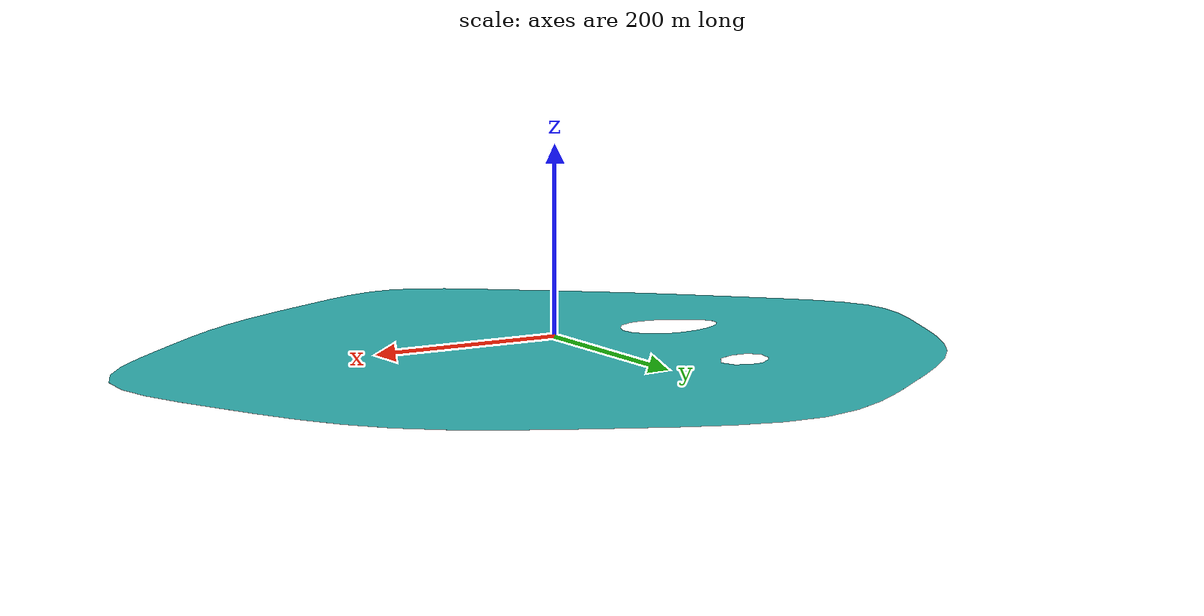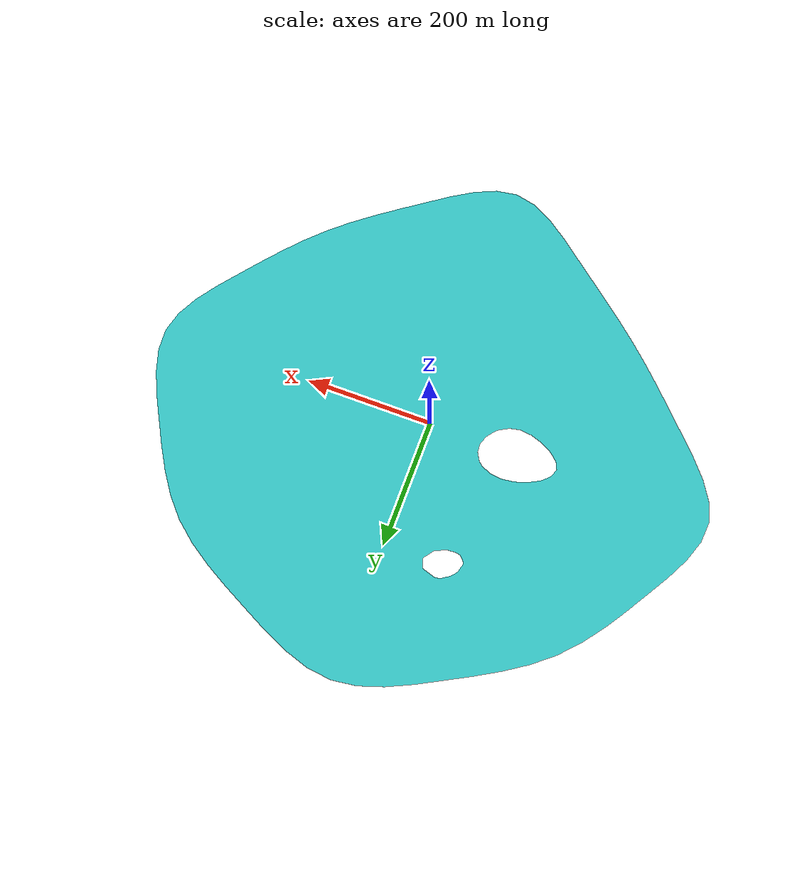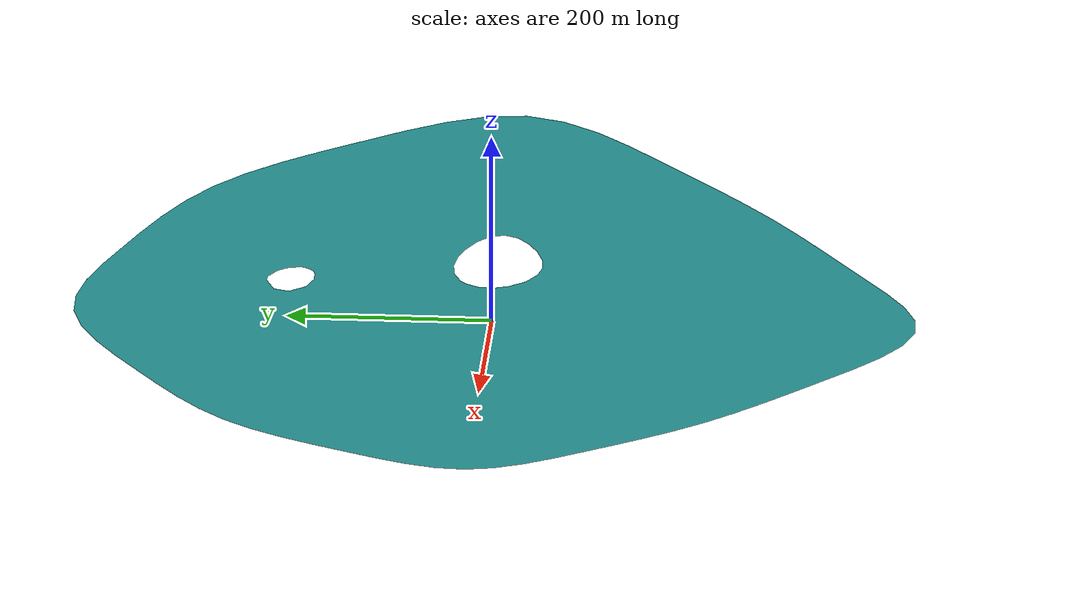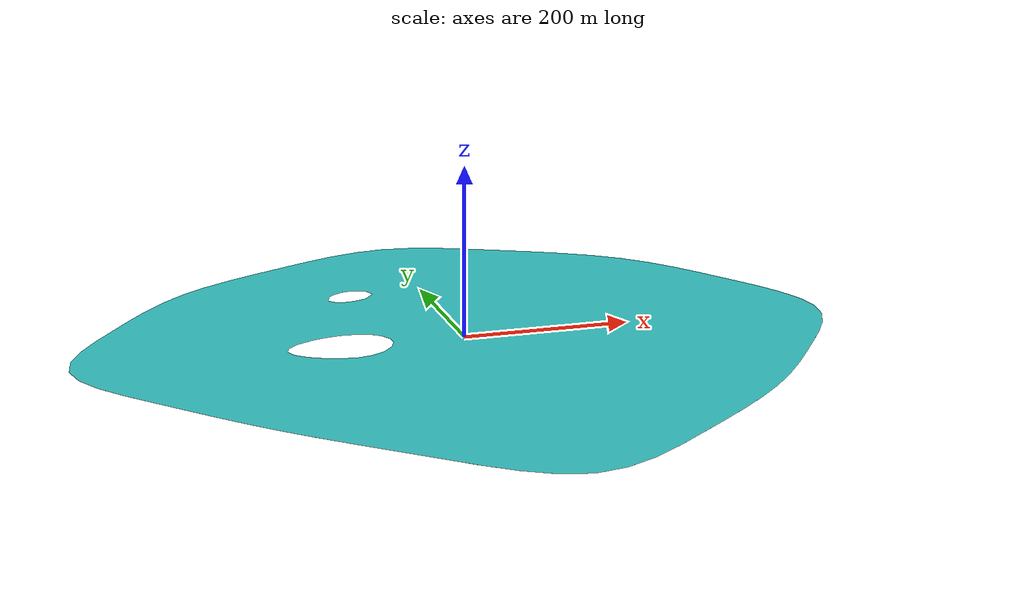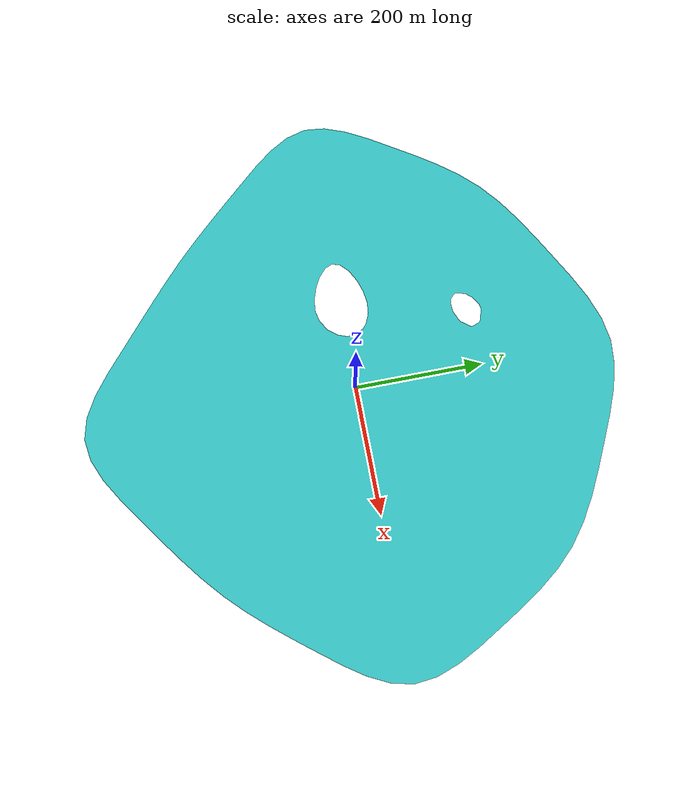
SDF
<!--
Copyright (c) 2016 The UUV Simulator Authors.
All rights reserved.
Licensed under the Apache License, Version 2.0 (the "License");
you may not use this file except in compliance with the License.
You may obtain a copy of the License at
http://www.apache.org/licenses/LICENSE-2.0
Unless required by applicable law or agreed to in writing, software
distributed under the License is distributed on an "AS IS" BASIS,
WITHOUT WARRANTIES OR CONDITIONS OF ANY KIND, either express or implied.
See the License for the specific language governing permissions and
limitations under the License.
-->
<?xml version="1.0" ?>
<sdf version="1.5">
  <model name="generic_empty_water">
      <static>true</static>
        <link name="generic_water">
          <visual name="surface">
              <pose>0 0 0 0 0 0</pose>
              <cast_shadows>false</cast_shadows>
              <geometry>
                  <mesh><uri>model://lake/meshes/WaterSurface.dae</uri><scale>1 1 1</scale></mesh>
              </geometry>
              <material>
                <script>
                  <uri>file://Media/materials/scripts/water.material</uri>
                  <name>UUVSimulator/StaticTurquoiseWater</name>
                </script>
              </material>
          </visual>
      </link>
  </model>
</sdf>
